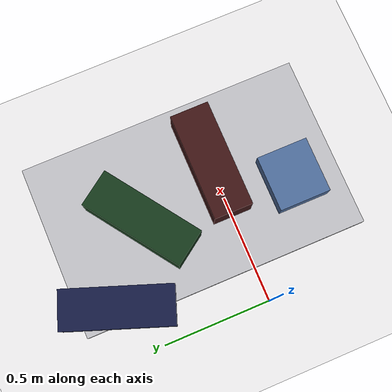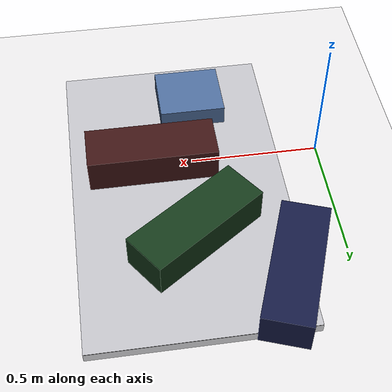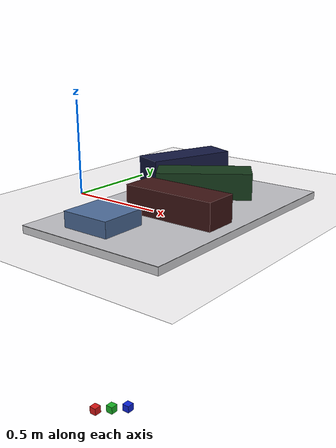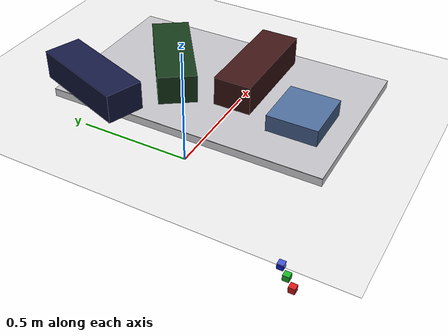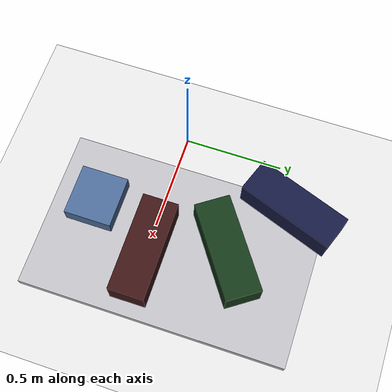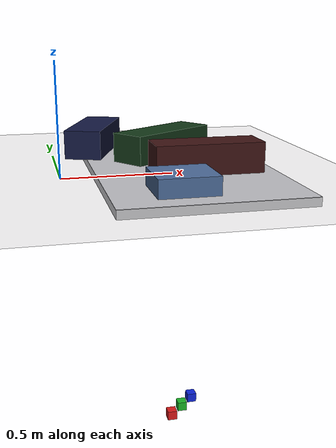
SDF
<?xml version="1.0" ?>
<sdf version="1.10">
  <world name="sort_cell_twin">
    <physics name="1ms" type="ode">
      <max_step_size>0.001</max_step_size>
      <real_time_factor>1.0</real_time_factor>
    </physics>
    <plugin filename="gz-sim-physics-system" name="gz::sim::systems::Physics"/>
    <plugin filename="gz-sim-user-commands-system" name="gz::sim::systems::UserCommands"/>
    <plugin filename="gz-sim-scene-broadcaster-system" name="gz::sim::systems::SceneBroadcaster"/>
    <plugin filename="gz-sim-sensors-system" name="gz::sim::systems::Sensors">
      <render_engine>ogre2</render_engine>
    </plugin>

    <light type="directional" name="sun">
      <cast_shadows>true</cast_shadows>
      <pose>0 0 10 0 0 0</pose>
      <diffuse>0.95 0.95 0.95 1</diffuse>
      <specular>0.3 0.3 0.3 1</specular>
      <direction>-0.3 0.2 -0.9</direction>
    </light>

    <model name="ground_plane">
      <static>true</static>
      <link name="link">
        <collision name="collision">
          <geometry><plane><normal>0 0 1</normal><size>20 20</size></plane></geometry>
        </collision>
        <visual name="visual">
          <geometry><plane><normal>0 0 1</normal><size>20 20</size></plane></geometry>
          <material><ambient>0.8 0.8 0.8 1</ambient><diffuse>0.8 0.8 0.8 1</diffuse></material>
        </visual>
      </link>
    </model>

    <model name="table">
      <static>true</static>
      <pose>0.57 0.13 -0.02 0 0 0</pose>
      <link name="link">
        <collision name="collision"><geometry><box><size>0.82 1.34 0.04</size></box></geometry></collision>
        <visual name="visual"><geometry><box><size>0.82 1.34 0.04</size></box></geometry>
          <material><ambient>0.74 0.74 0.76 1</ambient><diffuse>0.74 0.74 0.76 1</diffuse></material>
        </visual>
      </link>
    </model>

    <!-- Supply bin: scene.py SUPPLY_BIN, top at z = 0.08 -->
    <model name="supply_bin">
      <static>true</static>
      <pose>0.47 -0.32 0.04 0 0 0</pose>
      <link name="link">
        <collision name="collision"><geometry><box><size>0.26 0.24 0.08</size></box></geometry></collision>
        <visual name="visual"><geometry><box><size>0.26 0.24 0.08</size></box></geometry>
          <material><ambient>0.30 0.42 0.60 1</ambient><diffuse>0.30 0.42 0.60 1</diffuse></material>
        </visual>
      </link>
    </model>

    <!-- red outfeed lane, 0 deg from +x -->
    <model name="conveyor_red">
      <static>true</static>
      <pose>0.6600 0.0000 0.0700 0 0 0.00000</pose>
      <link name="link">
        <collision name="collision"><geometry><box><size>0.5 0.18 0.14</size></box></geometry></collision>
        <visual name="visual"><geometry><box><size>0.5 0.18 0.14</size></box></geometry>
          <material><ambient>0.24 0.08 0.08 1</ambient><diffuse>0.24 0.08 0.08 1</diffuse></material>
        </visual>
      </link>
    </model>
    <!-- green outfeed lane, 35 deg from +x -->
    <model name="conveyor_green">
      <static>true</static>
      <pose>0.5406 0.3786 0.0700 0 0 0.61087</pose>
      <link name="link">
        <collision name="collision"><geometry><box><size>0.5 0.18 0.14</size></box></geometry></collision>
        <visual name="visual"><geometry><box><size>0.5 0.18 0.14</size></box></geometry>
          <material><ambient>0.08 0.22 0.1 1</ambient><diffuse>0.08 0.22 0.1 1</diffuse></material>
        </visual>
      </link>
    </model>
    <!-- blue outfeed lane, 70 deg from +x -->
    <model name="conveyor_blue">
      <static>true</static>
      <pose>0.2257 0.6202 0.0700 0 0 1.22173</pose>
      <link name="link">
        <collision name="collision"><geometry><box><size>0.5 0.18 0.14</size></box></geometry></collision>
        <visual name="visual"><geometry><box><size>0.5 0.18 0.14</size></box></geometry>
          <material><ambient>0.08 0.1 0.26 1</ambient><diffuse>0.08 0.1 0.26 1</diffuse></material>
        </visual>
      </link>
    </model>

    <model name="part_red">
      <static>true</static>
      <pose>0.41 -0.38 -1.0 0 0 0</pose>
      <link name="link">
        <visual name="visual"><geometry><box><size>0.04 0.04 0.04</size></box></geometry>
          <material><ambient>0.85 0.10 0.10 1</ambient><diffuse>0.85 0.10 0.10 1</diffuse></material>
        </visual>
      </link>
    </model>
    <model name="part_green">
      <static>true</static>
      <pose>0.47 -0.32 -1.0 0 0 0</pose>
      <link name="link">
        <visual name="visual"><geometry><box><size>0.04 0.04 0.04</size></box></geometry>
          <material><ambient>0.10 0.70 0.15 1</ambient><diffuse>0.10 0.70 0.15 1</diffuse></material>
        </visual>
      </link>
    </model>
    <model name="part_blue">
      <static>true</static>
      <pose>0.53 -0.26 -1.0 0 0 0</pose>
      <link name="link">
        <visual name="visual"><geometry><box><size>0.04 0.04 0.04</size></box></geometry>
          <material><ambient>0.05 0.14 0.85 1</ambient><diffuse>0.05 0.14 0.85 1</diffuse></material>
        </visual>
      </link>
    </model>

    <!-- Top-down RGB-D camera over the bin. MUST match perception_cell.sdf and
         detector.py's CAM_XYZ / CAM_PITCH / FOV. -->
    <model name="rgbd_camera">
      <static>true</static>
      <pose>0.47 -0.32 1.00 0 1.5707963 0</pose>
      <link name="link">
        <sensor name="rgbd" type="rgbd_camera">
          <update_rate>10</update_rate>
          <always_on>true</always_on>
          <topic>rgbd_camera</topic>
          <camera>
            <horizontal_fov>1.2217</horizontal_fov>
            <image><width>640</width><height>480</height><format>R8G8B8</format></image>
            <clip><near>0.05</near><far>3.0</far></clip>
          </camera>
        </sensor>
      </link>
    </model>

    <!-- Cell overview camera for the demo video. Front-right of the cell,
         looking back at the pedestal so the bin (-y), arm and conveyor (+y) are
         all in frame. -->
    <model name="iso_camera">
      <static>true</static>
      <pose>2.60 -2.00 2.05 0 0.4622 2.3562</pose>
      <link name="link">
        <sensor name="iso" type="camera">
          <update_rate>15</update_rate>
          <always_on>true</always_on>
          <topic>iso_camera</topic>
          <camera>
            <horizontal_fov>0.78</horizontal_fov>
            <image><width>900</width><height>800</height><format>R8G8B8</format></image>
            <clip><near>0.05</near><far>20.0</far></clip>
          </camera>
        </sensor>
      </link>
    </model>
  </world>
</sdf>
